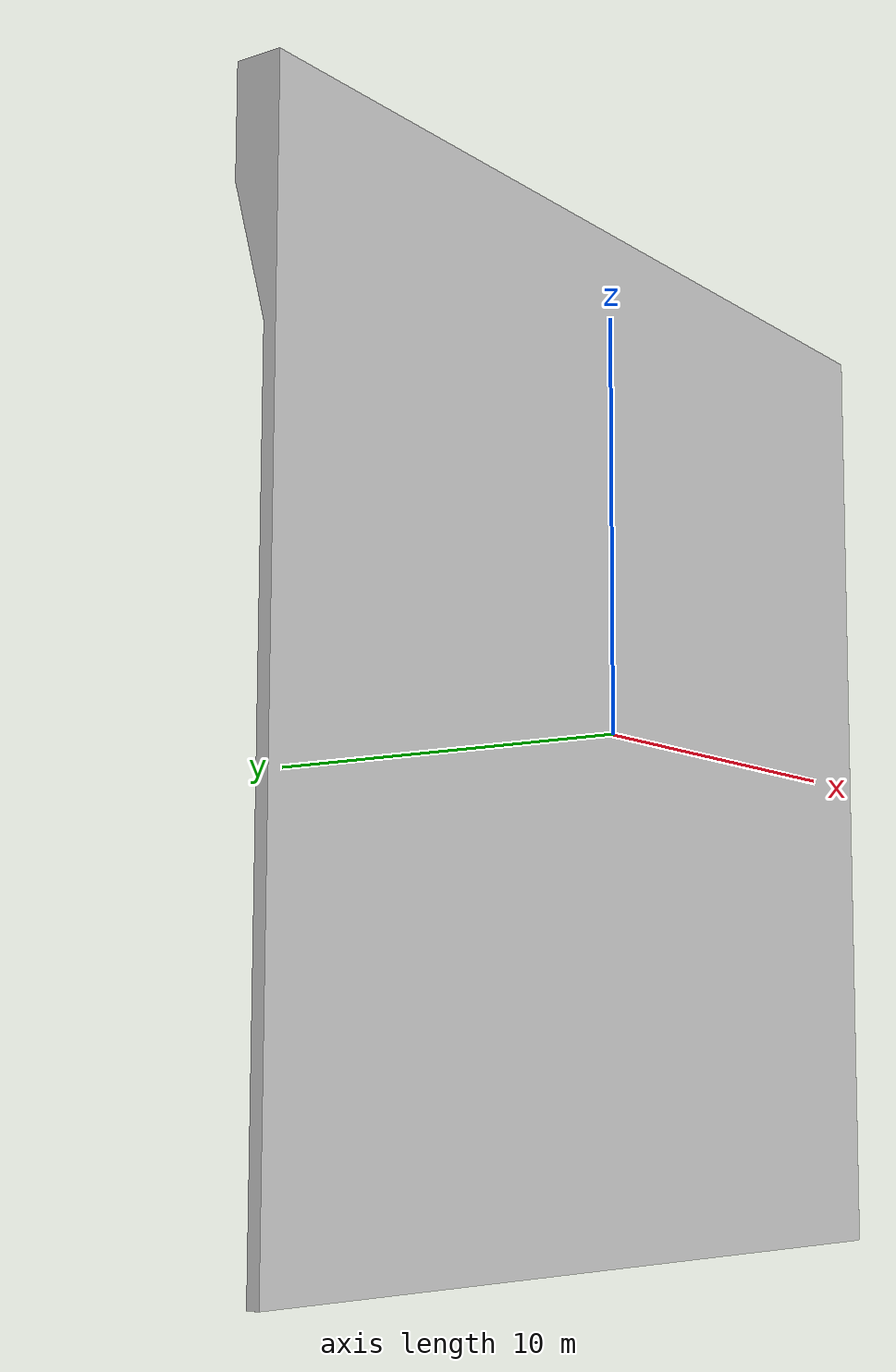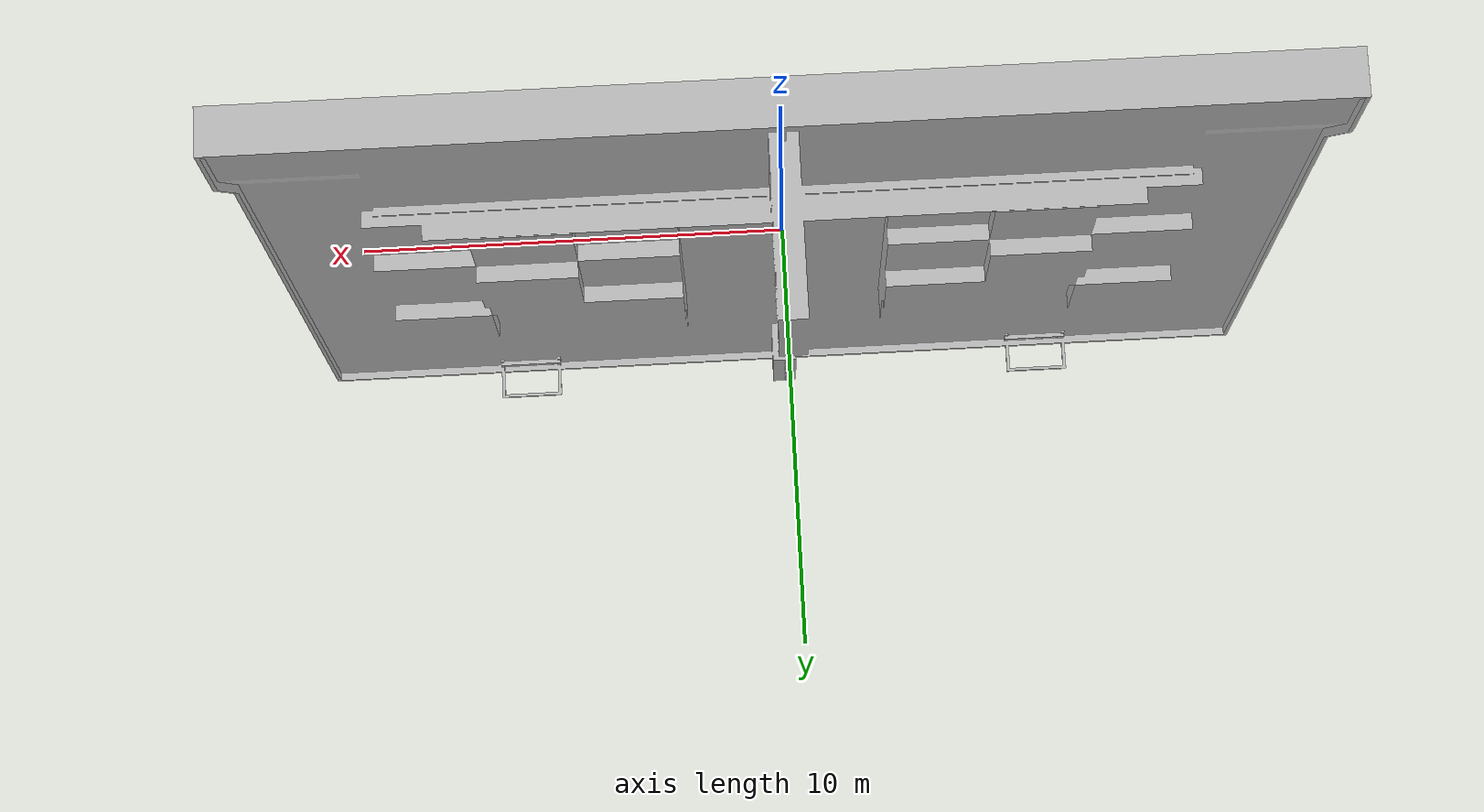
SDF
<?xml version="1.0"?>
<sdf version="1.4">
    <model name="arena">
      <pose>0 0 0 0 0 0</pose>
      <static>true</static>
      <link name="link">
        <visual name="visual">
          <geometry>
            <mesh>
              <uri>model://arena/arena.obj</uri>
              <scale>2 2 2</scale>
            </mesh>
          </geometry>
        </visual>

        <collision name="collision">
          <geometry>
            <plane>
              <normal>0 0 1</normal>
              <size>2.43 2.43</size>
            </plane>
          </geometry>
          <surface>
            <friction>
              <ode>
                <mu>100</mu>
                <mu2>50</mu2>
              </ode>
            </friction>
          </surface>
        </collision>
      </link>
    </model>
</sdf>
